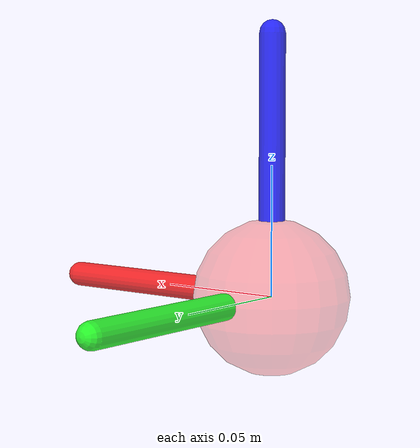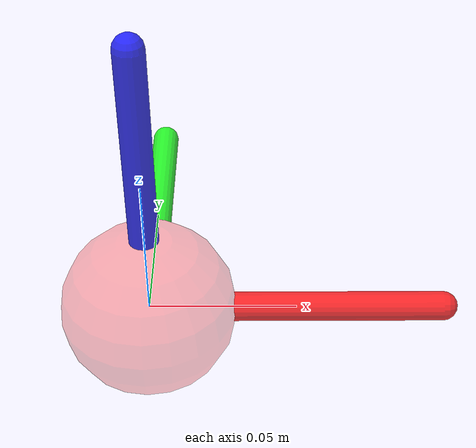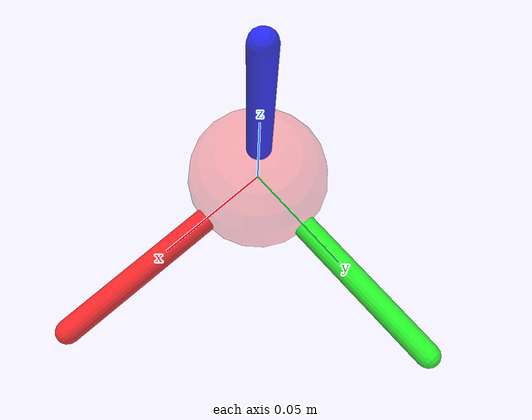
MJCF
=<mujoco model="marker_sphere">
    <worldbody>
        <body name="marker_origin">
            <!-- Sphere marker -->
            <geom type="sphere"
                  size="0.03"
                  rgba="1 0 0 0.3"
                  contype="0"
                  conaffinity="0"/>

            <!-- X axis (red) -->
            <geom type="capsule"
                  fromto="0 0 0 0.1 0 0"
                  size="0.005"
                  rgba="1 0 0 0.8"
                  contype="0"
                  conaffinity="0"/>

            <!-- Y axis (green) -->
            <geom type="capsule"
                  fromto="0 0 0 0 0.1 0"
                  size="0.005"
                  rgba="0 1 0 0.8"
                  contype="0"
                  conaffinity="0"/>

            <!-- Z axis (blue) -->
            <geom type="capsule"
                  fromto="0 0 0 0 0 0.1"
                  size="0.005"
                  rgba="0 0 1 0.8"
                  contype="0"
                  conaffinity="0"/>
        </body>
    </worldbody>
</mujoco>
